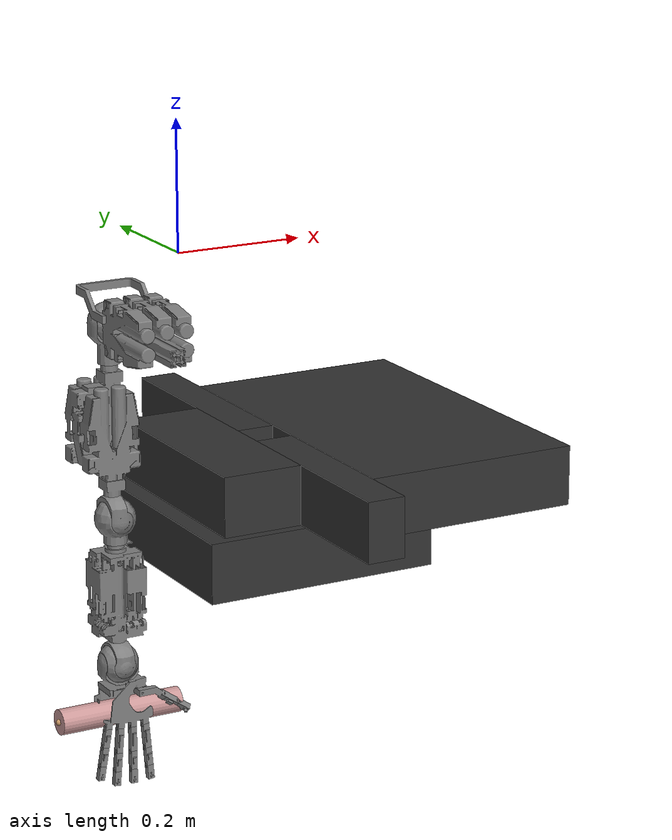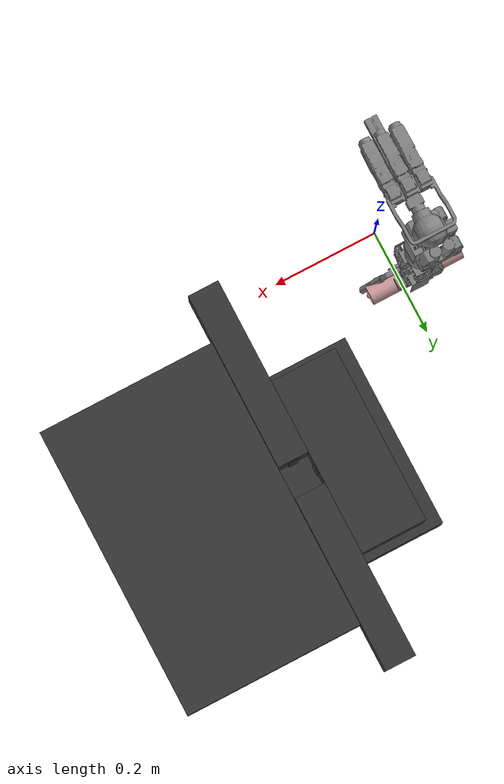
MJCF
<mujoco model="MUSASHILARM">
    <compiler inertiafromgeom="true" angle="radian" meshdir="MUSASHILARM_meshes/"/>
    <option timestep="0.01" iterations="20" gravity="0 0 0" integrator="RK4"/>
    <size njmax="1000" nconmax="1000" />
    <default>
        <joint type="hinge" />
        <site rgba=".8 .6 .4 1"/>
        <geom friction=".5 .1 .1" margin="0.002" condim="1" contype="0" conaffinity="0" />
    </default>
    <asset>
        <mesh name="LARM_SCAPULA_LINK_mesh" file="LARM_SCAPULA_LINK_mesh.stl" />
        <mesh name="LARM_HUMERUS_DUMMY1_LINK_mesh" file="LARM_HUMERUS_DUMMY1_LINK_mesh.stl" />
        <mesh name="LARM_HUMERUS_DUMMY2_LINK_mesh" file="LARM_HUMERUS_DUMMY2_LINK_mesh.stl"/>
        <mesh name="LARM_HUMERUS_LINK_mesh" file="LARM_HUMERUS_LINK_mesh.stl" />
        <mesh name="LARM_FOREARM_DUMMY1_LINK_mesh" file="LARM_FOREARM_DUMMY1_LINK_mesh.stl" />
        <mesh name="LARM_FOREARM_LINK_mesh" file="LARM_FOREARM_LINK_mesh.stl" />
        <mesh name="LARM_HAND_DUMMY1_LINK_mesh" file="LARM_HAND_DUMMY1_LINK_mesh.stl" />
        <mesh name="LARM_HAND_LINK_mesh" file="LARM_HAND_LINK_mesh.stl" />
        <mesh name="LARM_INDEX3_LINK_mesh" file="LARM_INDEX3_LINK_mesh.stl" />
        <mesh name="LARM_INDEX2_LINK_mesh" file="LARM_INDEX2_LINK_mesh.stl" />
        <mesh name="LARM_INDEX1_LINK_mesh" file="LARM_INDEX1_LINK_mesh.stl" />
        <mesh name="LARM_LITTLE3_LINK_mesh" file="LARM_LITTLE3_LINK_mesh.stl" />
        <mesh name="LARM_LITTLE2_LINK_mesh" file="LARM_LITTLE2_LINK_mesh.stl" />
        <mesh name="LARM_LITTLE1_LINK_mesh" file="LARM_LITTLE1_LINK_mesh.stl" />
        <mesh name="LARM_MIDDLE3_LINK_mesh" file="LARM_MIDDLE3_LINK_mesh.stl" />
        <mesh name="LARM_MIDDLE2_LINK_mesh" file="LARM_MIDDLE2_LINK_mesh.stl" />
        <mesh name="LARM_MIDDLE1_LINK_mesh" file="LARM_MIDDLE1_LINK_mesh.stl" />
        <mesh name="LARM_RING3_LINK_mesh" file="LARM_RING3_LINK_mesh.stl" />
        <mesh name="LARM_RING2_LINK_mesh" file="LARM_RING2_LINK_mesh.stl" />
        <mesh name="LARM_RING1_LINK_mesh" file="LARM_RING1_LINK_mesh.stl" />
        <mesh name="LARM_THUMB4_LINK_mesh" file="LARM_THUMB4_LINK_mesh.stl" />
        <mesh name="LARM_THUMB3_LINK_mesh" file="LARM_THUMB3_LINK_mesh.stl" />
        <mesh name="LARM_THUMB2_LINK_mesh" file="LARM_THUMB2_LINK_mesh.stl" />
        <mesh name="LARM_THUMB1_LINK_mesh" file="LARM_THUMB1_LINK_mesh.stl" />
    </asset>
    <worldbody>
        <body name="base" pos="-0.1 -0.2 -0.1">
        <geom type="mesh" mesh="LARM_SCAPULA_LINK_mesh" />
            <body name="LARM_HUMERUS_DUMMY1_LINK" pos="0 0.193 0">
            <inertial pos="0 0 0" quat="0.820473 0.339851 -0.17592 0.424708" mass="0.001" diaginertia="0.001 0.001 0.001" />
            <joint name="LARM_SHOULDER_JOINT_P" pos="0 0 0" axis="0 1 0" limited="true" range="-2.0944 0.785399" damping="0.2" type="hinge"/>
            <geom pos="0 0.193 0" type="mesh" mesh="LARM_HUMERUS_DUMMY1_LINK_mesh" />
            <geom name="LARM_HUMERUS_DUMMY1_LINK" type="sphere" size="0.035" rgba=".8 .6 .4 0" pos="0 0.035 0"/>
            <body name="LARM_HUMERUS_DUMMY2_LINK" pos="0 0.039 0">
                <inertial pos="0 0 0" quat="0.820473 0.339851 -0.17592 0.424708" mass="0.001" diaginertia="0.001 0.001 0.001" />
                <joint name="LARM_SHOULDER_JOINT_R" pos="0 0 0" axis="1 0 0" limited="true" range="-0.523599 2.0944" damping="0.2" type="hinge"/>
                <geom pos="0 0.039 0" type="mesh" mesh="LARM_HUMERUS_DUMMY2_LINK_mesh" />
                <geom name="LARM_HUMERUS_DUMMY2_LINK" type="cylinder" fromto="0 0 0.04 0 0 -0.08" size="0.025" rgba=".8 .6 .4 0"/>
                <body name="LARM_HUMERUS_LINK" pos="0 0 -0.073">
                    <inertial pos="0.024 0.0021 -0.135" quat="0.820473 0.339851 -0.17592 0.424708" mass="2.19" diaginertia="0.001 0.001 0.001" />
                    <joint name="LARM_SHOULDER_JOINT_Y" pos="0 0 0" axis="0 0 1" limited="true" range="-1.5708 1.5708" damping="0.2" type="hinge"/>
                    <geom pos="0 0 -0.073" type="mesh" mesh="LARM_HUMERUS_LINK_mesh" />
                    <geom name="LARM_HUMERUS_LINK" type="cylinder" size="0.05" fromto="-0.01 0 -0.02 -0.01 0 -0.15" rgba=".8 .6 .4 0"/>
                    <body name="LARM_FOREARM_DUMMY1_LINK" pos="0.004 0 -0.231">
                        <inertial pos="-0.008065 0 -0.146065" quat="0.820473 0.339851 -0.17592 0.424708" mass="0.72" diaginertia="0.001 0.001 0.001" />
                        <joint name="LARM_ELBOW_JOINT_P" pos="0 0 0" axis="0 1 0" limited="true" range="-2.3562 0" damping="0.2" type="hinge"/>
                        <geom pos="0.004 0 -0.231" type="mesh" mesh="LARM_FOREARM_DUMMY1_LINK_mesh" />
                        <geom name="LARM_FOREARM_DUMMY1_LINK_cylinder" type="cylinder" size="0.035" rgba=".8 .6 .4 0" fromto="0 0 0.03 0 0 -0.05"/>
                        <body name="LARM_FOREARM_LINK" pos="0 0 -0.04">
                            <inertial pos="-0.003285 0 -0.13898" quat="0.820473 0.339851 -0.17592 0.424708" mass="0.75" diaginertia="0.001 0.001 0.001" />
                            <joint name="LARM_ELBOW_JOINT_Y" pos="0 0 0" axis="0.104591 0 0.994515" limited="true" range="-1.5708 1.5708" damping="0.2" type="hinge"/>
                            <geom pos="0 0 -0.04" type="mesh" mesh="LARM_FOREARM_LINK_mesh" />
                            <body name="LARM_HAND_DUMMY1_LINK" pos="0 0 -0.191">
                                <inertial pos="0 0 0" quat="0.820473 0.339851 -0.17592 0.424708" mass="0.001" diaginertia="0.001 0.001 0.001" />
                                <joint name="LARM_WRIST_JOINT_P" pos="0 0 0" axis="0 1 0" limited="true" range="-0.7854 0.7854" damping="0.2" type="hinge"/>
                                <geom pos="0 0 -0.191" type="mesh" mesh="LARM_HAND_DUMMY1_LINK_mesh" />
                                <body name="LARM_HAND_LINK" pos="0 0 0">
                                    <inertial pos="0.01125 0 -0.03" quat="0.820473 0.339851 -0.17592 0.424708" mass="0.192" diaginertia="0.001 0.001 0.001" />
                                    <joint name="LARM_WRIST_JOINT_R" pos="0 0 0" axis="1 0 0" limited="true" range="-1.309 1.309" damping="0.2" type="hinge"/>
                                    <geom type="mesh" mesh="LARM_HAND_LINK_mesh" />
                                    <geom name="ball_geom" rgba="0.8 0.6 0.6 1" type="cylinder" fromto="-0.1 0 -0.08 0.1 0 -0.08" size="0.02" density="2000" contype="2" conaffinity="1" />
                                    <site name="ball-top" pos="0.1 0.0 -0.08" size="0.005"/>
                                    <site name="ball-bottom" pos="-0.1 0.0 -0.08" size="0.005"/>
                                    <body name="LARM_INDEX3_LINK" pos="0.0349544 -0.017 -0.100974">
                                        <inertial pos="0 0 0" quat="0.820473 0.339851 -0.17592 0.424708" mass="0.001" diaginertia="0.001 0.001 0.001" />
                                        <geom pos="0.0349544 -0.017 -0.100974" type="mesh" mesh="LARM_INDEX3_LINK_mesh" />
                                        <body name="LARM_INDEX2_LINK" pos="0.00348623 0 -0.0398478">
                                            <inertial pos="0 0 0" quat="0.820473 0.339851 -0.17592 0.424708" mass="0.001" diaginertia="0.001 0.001 0.001" />
                                            <geom pos="0.00348623 0 -0.0398478" type="mesh" mesh="LARM_INDEX2_LINK_mesh" />
                                            <body name="LARM_INDEX1_LINK" pos="0.00261467 0 -0.0298858">
                                                <inertial pos="0 0 0" quat="0.820473 0.339851 -0.17592 0.424708" mass="0.001" diaginertia="0.001 0.001 0.001" />
                                                <geom pos="0.00261467 0 -0.0298858" type="mesh" mesh="LARM_INDEX1_LINK_mesh" />
                                            </body>
                                        </body>
                                    </body>
                                    <body name="LARM_LITTLE3_LINK" pos="-0.0273876 -0.017 -0.098252">
                                        <inertial pos="0 0 0" quat="0.820473 0.339851 -0.17592 0.424708" mass="0.001" diaginertia="0.001 0.001 0.001" />
                                        <geom pos="-0.0273876 -0.017 -0.098252" type="mesh" mesh="LARM_LITTLE3_LINK_mesh" />
                                        <body name="LARM_LITTLE2_LINK" pos="-0.00520945 0 -0.0295442">
                                            <inertial pos="0 0 0" quat="0.820473 0.339851 -0.17592 0.424708" mass="0.001" diaginertia="0.001 0.001 0.001" />
                                            <geom pos="-0.00520945 0 -0.0295442" type="mesh" mesh="LARM_LITTLE2_LINK_mesh" />
                                            <body name="LARM_LITTLE1_LINK" pos="-0.00520945 0 -0.0295442">
                                                <inertial pos="0 0 0" quat="0.820473 0.339851 -0.17592 0.424708" mass="0.001" diaginertia="0.001 0.001 0.001" />
                                                <geom pos="-0.00520945 0 -0.0295442" type="mesh" mesh="LARM_LITTLE1_LINK_mesh" />
                                            </body>
                                        </body>
                                    </body>
                                    <body name="LARM_MIDDLE3_LINK" pos="0.0141209 -0.017 -0.101883">
                                        <inertial pos="0 0 0" quat="0.820473 0.339851 -0.17592 0.424708" mass="0.001" diaginertia="0.001 0.001 0.001" />
                                        <geom pos="0.0141209 -0.017 -0.101883" type="mesh" mesh="LARM_MIDDLE3_LINK_mesh" />
                                        <body name="LARM_MIDDLE2_LINK" pos="0 0 -0.04">
                                            <inertial pos="0 0 0" quat="0.820473 0.339851 -0.17592 0.424708" mass="0.001" diaginertia="0.001 0.001 0.001" />
                                            <geom pos="0 0 -0.04" type="mesh" mesh="LARM_MIDDLE2_LINK_mesh" />
                                            <body name="LARM_MIDDLE1_LINK" pos="0 0 -0.03">
                                                <inertial pos="0 0 0" quat="0.820473 0.339851 -0.17592 0.424708" mass="0.001" diaginertia="0.001 0.001 0.001" />
                                                <geom pos="0 0 -0.03" type="mesh" mesh="LARM_MIDDLE1_LINK_mesh" />
                                            </body>
                                        </body>
                                    </body>
                                    <body name="LARM_RING3_LINK" pos="-0.00671263 -0.017 -0.100974">
                                        <inertial pos="0 0 0" quat="0.820473 0.339851 -0.17592 0.424708" mass="0.001" diaginertia="0.001 0.001 0.001" />
                                        <geom pos="-0.00671263 -0.017 -0.100974" type="mesh" mesh="LARM_RING3_LINK_mesh" />
                                        <body name="LARM_RING2_LINK" pos="-0.00348623 0 -0.0398478">
                                            <inertial pos="0 0 0" quat="0.820473 0.339851 -0.17592 0.424708" mass="0.001" diaginertia="0.001 0.001 0.001" />
                                            <geom pos="-0.00348623 0 -0.0398478" type="mesh" mesh="LARM_RING2_LINK_mesh" />
                                            <body name="LARM_RING1_LINK" pos="-0.00261467 0 -0.0298858">
                                                <inertial pos="0 0 0" quat="0.820473 0.339851 -0.17592 0.424708" mass="0.001" diaginertia="0.001 0.001 0.001" />
                                                <geom pos="-0.00261467 0 -0.0298858" type="mesh" mesh="LARM_RING1_LINK_mesh" />
                                            </body>
                                        </body>
                                    </body>
                                    <body name="LARM_THUMB4_LINK" pos="0.0299678 -0.006 -0.0497134">
                                        <inertial pos="0 0 0" quat="0.820473 0.339851 -0.17592 0.424708" mass="0.001" diaginertia="0.001 0.001 0.001" />
                                        <geom pos="0.0299678 -0.006 -0.0497134" type="mesh" mesh="LARM_THUMB4_LINK_mesh" />
                                        <body name="LARM_THUMB3_LINK" pos="0 0 0">
                                            <inertial pos="0 0 0" quat="0.820473 0.339851 -0.17592 0.424708" mass="0.001" diaginertia="0.001 0.001 0.001" />
                                            <geom type="mesh" mesh="LARM_THUMB3_LINK_mesh" />
                                            <body name="LARM_THUMB2_LINK" pos="0.0360228 -0.011 -0.0109274">
                                                <inertial pos="0 0 0" quat="0.820473 0.339851 -0.17592 0.424708" mass="0.001" diaginertia="0.001 0.001 0.001" />
                                                <geom pos="0.0360228 -0.011 -0.0109274" type="mesh" mesh="LARM_THUMB2_LINK_mesh" />
                                                <body name="LARM_THUMB1_LINK" pos="0.0245746 0 -0.0172073">
                                                    <inertial pos="0 0 0" quat="0.820473 0.339851 -0.17592 0.424708" mass="0.001" diaginertia="0.001 0.001 0.001" />
                                                    <geom pos="0.0245746 0 -0.0172073" type="mesh" mesh="LARM_THUMB1_LINK_mesh" />
                                                </body>
                                            </body>
                                        </body>
                                    </body>
                                </body>
                            </body>
                        </body>
                    </body>
                </body>
            </body>
        </body>
        </body>

        <body name="g1" pos="0.334 0.3 -0.47" axisangle="0 1 0 0.05">
            <geom name="g1" rgba="0.2 0.2 0.2 1" type="box" size="0.003 0.01 0.05" contype="1" conaffinity="1" />
        </body>

        <body name="g2" pos="0.266 0.3 -0.47" axisangle="0 1 0 -0.05">
            <geom name="g2" rgba="0.2 0.2 0.2 1" type="box" size="0.003 0.01 0.05" contype="1" conaffinity="1" />
        </body>

        <body name="g3" pos="0.3 0.334 -0.47" axisangle="1 0 0 -0.05">
            <geom name="g3" rgba="0.2 0.2 0.2 1" type="box" size="0.01 0.003 0.05" contype="1" conaffinity="1" />
        </body>

        <body name="g4" pos="0.3 0.266 -0.47" axisangle="1 0 0 0.05">
            <geom name="g4" rgba="0.2 0.2 0.2 1" type="box" size="0.01 0.003 0.05" contype="1" conaffinity="1" />
        </body>

        <body name="fl" pos="0.3 0.3 -0.55">
            <geom name="fl" rgba="0.2 0.2 0.2 1" type="box" size="0.2 0.2 0.05" contype="1" conaffinity="1" />
        </body>

        <body name="w1" pos="0.516 0.3 -0.45">
            <geom name="w1" rgba="0.2 0.2 0.2 1" type="box" size="0.183 0.3 0.05" contype="1" conaffinity="1" />
        </body>
        <body name="w2" pos="0.2 0.3 -0.45">
            <geom name="w2" rgba="0.2 0.2 0.2 1" type="box" size="0.068 0.183 0.05" contype="1" conaffinity="1" />
        </body>
        <body name="w3" pos="0.3 0.516 -0.45">
            <geom name="w3" rgba="0.2 0.2 0.2 1" type="box" size="0.032 0.183 0.05" contype="1" conaffinity="1" />
        </body>

        <body name="w4" pos="0.3 0.084 -0.45">
            <geom name="w4" rgba="0.2 0.2 0.2 1" type="box" size="0.032 0.183 0.05" contype="1" conaffinity="1" />
        </body>

    </worldbody>
    <actuator>
        <motor joint="LARM_SHOULDER_JOINT_P" ctrlrange="-1.0 1.0" ctrllimited="true"/>
        <motor joint="LARM_SHOULDER_JOINT_R" ctrlrange="-1.0 1.0" ctrllimited="true"/>
        <motor joint="LARM_SHOULDER_JOINT_Y" ctrlrange="-1.0 1.0" ctrllimited="true"/>
        <motor joint="LARM_ELBOW_JOINT_P" ctrlrange="-1.0 1.0" ctrllimited="true"/>
        <motor joint="LARM_ELBOW_JOINT_Y" ctrlrange="-1.0 1.0" ctrllimited="true"/>
        <motor joint="LARM_WRIST_JOINT_P" ctrlrange="-1.0 1.0" ctrllimited="true"/>
        <motor joint="LARM_WRIST_JOINT_R" ctrlrange="-1.0 1.0" ctrllimited="true"/>
    </actuator>
</mujoco>
